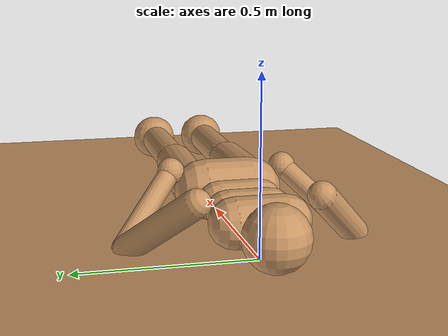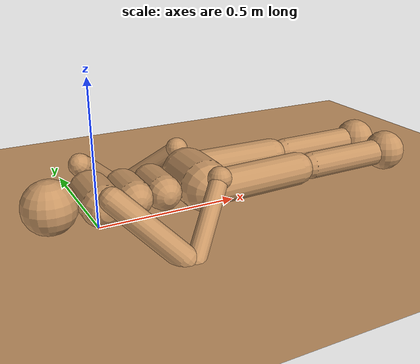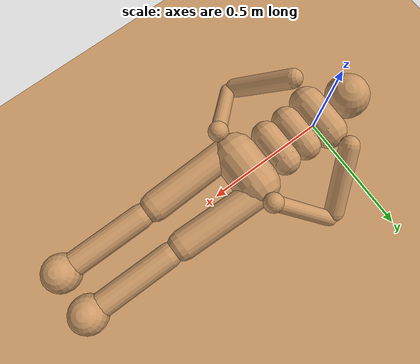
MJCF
<mujoco model="humanoidstandup">
    <compiler angle="degree" inertiafromgeom="true"/>
    <default>
        <joint armature="1" damping="1" limited="true"/>
        <geom conaffinity="1" condim="6" contype="1" margin="0.001" rgba="0.8 0.6 .4 1"/>
        <motor ctrllimited="true" ctrlrange="-.4 .4"/>
    </default>
    <option integrator="RK4" iterations="50" solver="PGS" timestep="0.003">
    </option>

    <worldbody>
        <geom name="floor" size="5 5 0.1" type="plane" condim="6"/>
        <body name="robot" pos="0 0 .105">
            <site name="robot" rgba="1 0 0 .1"/>
            <camera name="vision" pos=".125 0 .2" xyaxes="0 -1 0 .4 0 1" fovy="100"/>
            <joint armature="0" damping="0" limited="false" name="root" pos="0 0 0" stiffness="0" type="free"/>
            <geom fromto="0 -.07 0 0 .07 0" name="robot1" size="0.07" type="capsule"/>
            <geom name="head" pos="-.15 0 0" size=".09" type="sphere" user="258"/>
            <geom fromto=".11 -.06 0 .11 .06 0" name="uwaist" size="0.06" type="capsule"/>
            <body name="lwaist" pos=".21 0 0" quat="1.000 0 -0.002 0">
                <geom fromto="0 -.06 0 0 .06 0" name="lwaist" size="0.06" type="capsule"/>
                <joint armature="0.02" axis="0 0 1" damping="5" name="abdomen_z" pos="0 0 0.065" range="-45 45" stiffness="20" type="hinge"/>
                <joint armature="0.02" axis="0 1 0" damping="5" name="abdomen_y" pos="0 0 0.065" range="-75 30" stiffness="10" type="hinge"/>
                <body name="pelvis" pos="0.165 0 0" quat="1.000 0 -0.002 0">
                    <joint armature="0.02" axis="1 0 0" damping="5" name="abdomen_x" pos="0 0 0.1" range="-35 35" stiffness="10" type="hinge"/>
                    <geom fromto="-.02 -.07 0 -.02 .07 0" name="butt" size="0.09" type="capsule"/>
                    <body name="right_thigh" pos="0 -0.1 0">
                        <joint armature="0.01" axis="1 0 0" damping="5" name="right_hip_x" pos="0 0 0" range="-25 5" stiffness="10" type="hinge"/>
                        <joint armature="0.01" axis="0 0 1" damping="5" name="right_hip_z" pos="0 0 0" range="-60 35" stiffness="10" type="hinge"/>
                        <joint armature="0.0080" axis="0 1 0" damping="5" name="right_hip_y" pos="0 0 0" range="-110 20" stiffness="20" type="hinge"/>
                        <geom fromto="0 0 0 0.34 0.01 0" name="right_thigh1" size="0.06" type="capsule"/>
                        <body name="right_shin" pos="0.403 0.01 0">
                            <joint armature="0.0060" axis="0 -1 0" name="right_knee" pos="0 0 .02" range="-160 -2" type="hinge"/>
                            <geom fromto="0 0 0 0.3 0 0" name="right_shin1" size="0.049" type="capsule"/>
                            <body name="right_foot" pos="0.35 0 -.10">
                                <geom name="right_foot" pos="0 0 0.1" size="0.075" type="sphere" user="0"/>
                            </body>
                        </body>
                    </body>
                    <body name="left_thigh" pos="0 0.1 0">
                        <joint armature="0.01" axis="-1 0 0" damping="5" name="left_hip_x" pos="0 0 0" range="-25 5" stiffness="10" type="hinge"/>
                        <joint armature="0.01" axis="0 0 -1" damping="5" name="left_hip_z" pos="0 0 0" range="-60 35" stiffness="10" type="hinge"/>
                        <joint armature="0.01" axis="0 1 0" damping="5" name="left_hip_y" pos="0 0 0" range="-120 20" stiffness="20" type="hinge"/>
                        <geom fromto="0 0 0 0.34 -0.01 0" name="left_thigh1" size="0.06" type="capsule"/>
                        <body name="left_shin" pos="0.403 -0.01 0">
                            <joint armature="0.0060" axis="0 -1 0" name="left_knee" pos="0 0 .02" range="-160 -2" stiffness="1" type="hinge"/>
                            <geom fromto="0 0 0 0.3 0 0" name="left_shin1" size="0.049" type="capsule"/>
                            <body name="left_foot" pos="0.35 0 -.1">
                                <geom name="left_foot" type="sphere" size="0.075" pos="0 0 0.1" user="0" />
                            </body>
                        </body>
                    </body>
                </body>
            </body>
            <body name="right_upper_arm" pos="0 -0.17 0.06">
                <joint armature="0.0068" axis="2 1 1" name="right_shoulder1" pos="0 0 0" range="-85 60" stiffness="1" type="hinge"/>
                <joint armature="0.0051" axis="0 -1 1" name="right_shoulder2" pos="0 0 0" range="-85 60" stiffness="1" type="hinge"/>
                <geom fromto="0 0 0 .16 -.16 -.16" name="right_uarm1" size="0.04 0.16" type="capsule"/>
                <body name="right_lower_arm" pos=".18 -.18 -.18">
                    <joint armature="0.0028" axis="0 -1 1" name="right_elbow" pos="0 0 0" range="-90 50" stiffness="0" type="hinge"/>
                    <geom fromto="0.01 0.01 0.01 .17 .17 .17" name="right_larm" size="0.031" type="capsule"/>
                    <geom name="right_hand" pos=".18 .18 .18" size="0.04" type="sphere"/>
                    <camera pos="0 0 0"/>
                </body>
            </body>
            <body name="left_upper_arm" pos="0 0.17 0.06">
                <joint armature="0.0068" axis="2 -1 1" name="left_shoulder1" pos="0 0 0" range="-60 85" stiffness="1" type="hinge"/>
                <joint armature="0.0051" axis="0 1 1" name="left_shoulder2" pos="0 0 0" range="-60 85" stiffness="1" type="hinge"/>
                <geom fromto="0 0 0 .16 .16 -.16" name="left_uarm1" size="0.04 0.16" type="capsule"/>
                <body name="left_lower_arm" pos=".18 .18 -.18">
                    <joint armature="0.0028" axis="0 -1 -1" name="left_elbow" pos="0 0 0" range="-90 50" stiffness="0" type="hinge"/>
                    <geom fromto="0.01 -0.01 0.01 .17 -.17 .17" name="left_larm" size="0.031" type="capsule"/>
                    <geom name="left_hand" pos=".18 -.18 .18" size="0.04" type="sphere"/>
                </body>
            </body>
        </body>
    </worldbody>
    <tendon>
        <fixed name="left_hipknee">
            <joint coef="-1" joint="left_hip_y"/>
            <joint coef="1" joint="left_knee"/>
        </fixed>
        <fixed name="right_hipknee">
            <joint coef="-1" joint="right_hip_y"/>
            <joint coef="1" joint="right_knee"/>
        </fixed>
    </tendon>

    <sensor>

        <!-- Used for observation -->
        <accelerometer site="robot" name="accelerometer"/>
        <velocimeter site="robot" name="velocimeter"/>
        <gyro site="robot" name="gyro"/>
        <magnetometer site="robot" name="magnetometer"/>

        <!-- Used for intrinsic constraints -->
        <subtreecom body="robot" name="subtreecom"/>
        <subtreelinvel body="robot" name="subtreelinvel"/>
        <subtreeangmom body="robot" name="subtreeangmom"/>
   </sensor>

    <actuator>
        <motor gear="100" joint="abdomen_y" name="abdomen_y"/>
        <motor gear="100" joint="abdomen_z" name="abdomen_z"/>
        <motor gear="100" joint="abdomen_x" name="abdomen_x"/>
        <motor gear="100" joint="right_hip_x" name="right_hip_x"/>
        <motor gear="100" joint="right_hip_z" name="right_hip_z"/>
        <motor gear="300" joint="right_hip_y" name="right_hip_y"/>
        <motor gear="200" joint="right_knee" name="right_knee"/>
        <motor gear="100" joint="left_hip_x" name="left_hip_x"/>
        <motor gear="100" joint="left_hip_z" name="left_hip_z"/>
        <motor gear="300" joint="left_hip_y" name="left_hip_y"/>
        <motor gear="200" joint="left_knee" name="left_knee"/>
        <motor gear="25" joint="right_shoulder1" name="right_shoulder1"/>
        <motor gear="25" joint="right_shoulder2" name="right_shoulder2"/>
        <motor gear="25" joint="right_elbow" name="right_elbow"/>
        <motor gear="25" joint="left_shoulder1" name="left_shoulder1"/>
        <motor gear="25" joint="left_shoulder2" name="left_shoulder2"/>
        <motor gear="25" joint="left_elbow" name="left_elbow"/>
    </actuator>
</mujoco>
